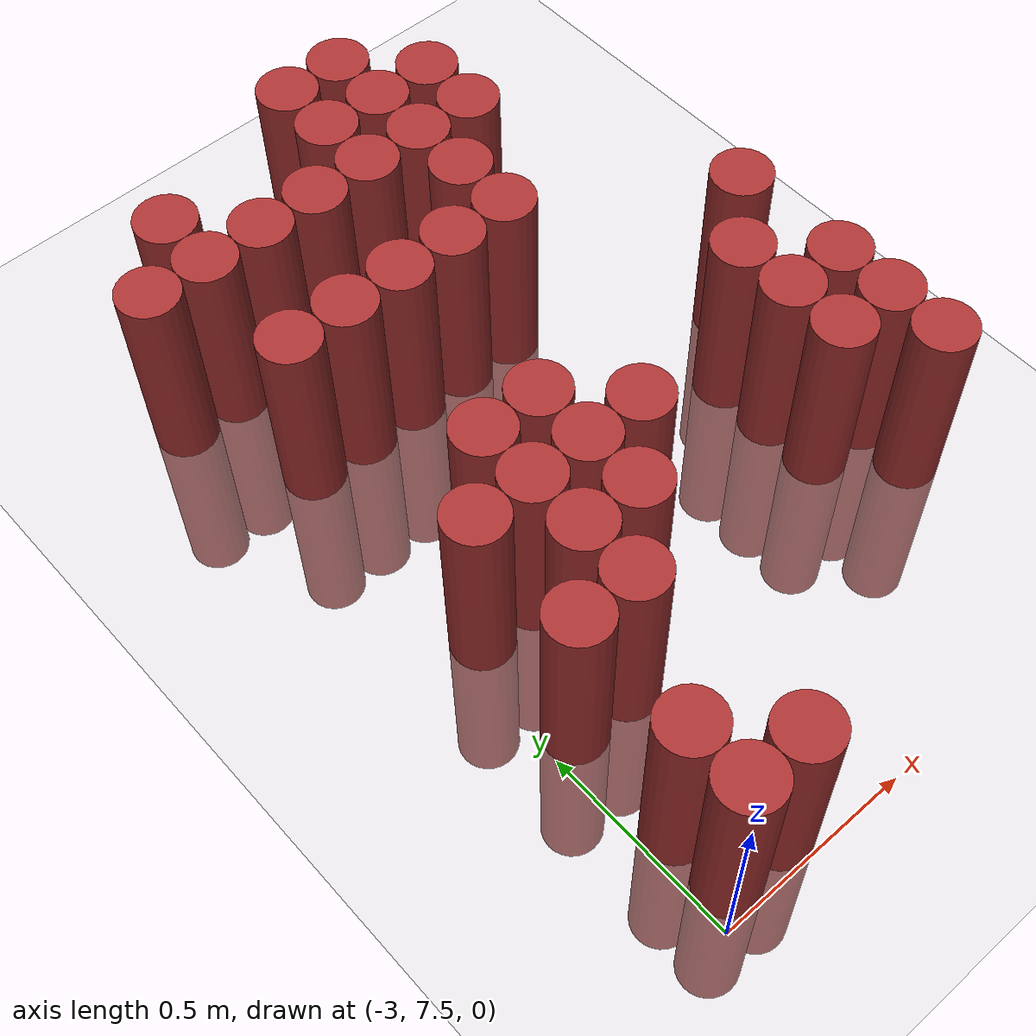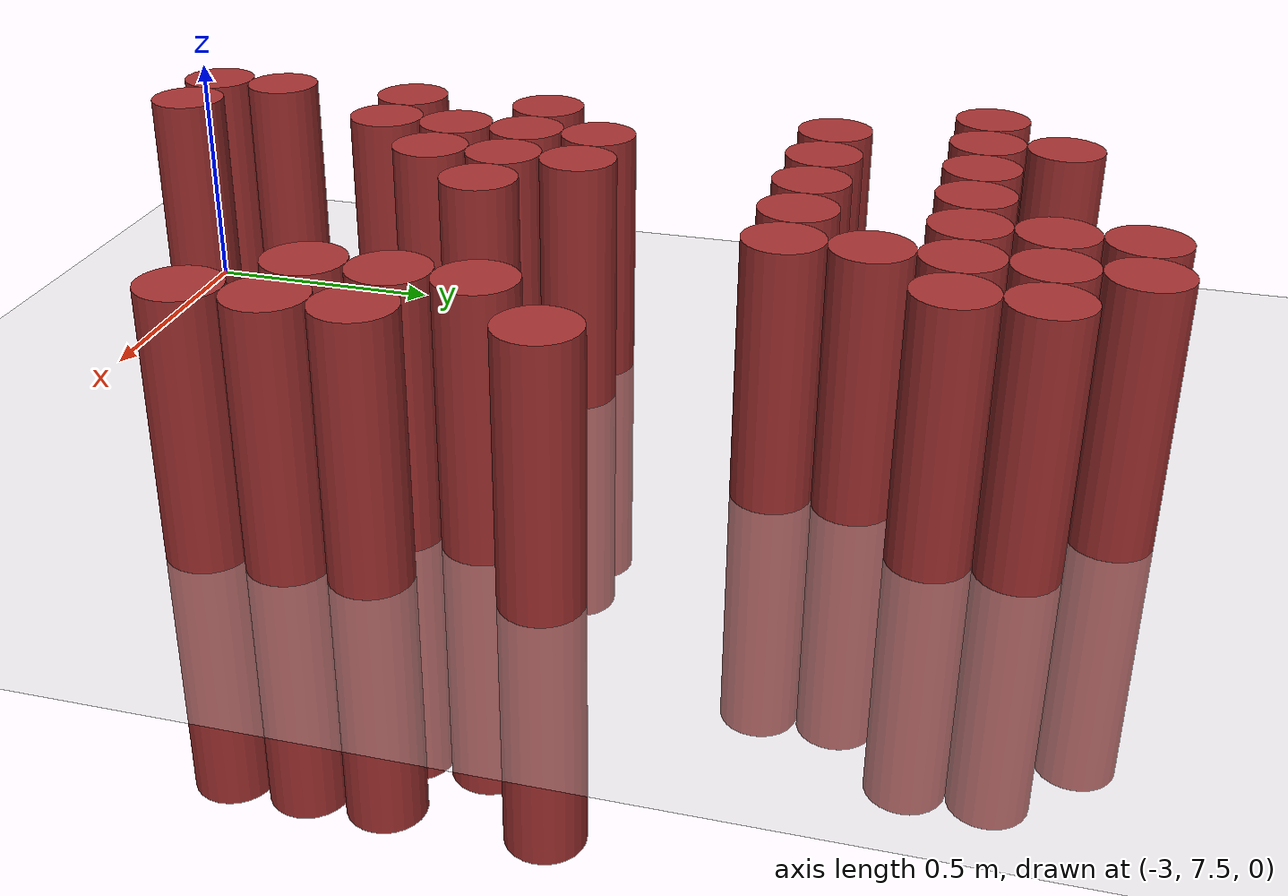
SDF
<sdf version="1.6">
 <world name="default">
  <model name="ground_plane">
   <static>1</static>
   <link name="link">
    <collision name="collision">
     <geometry><plane><normal>0 0 1</normal><size>100 100</size></plane></geometry>
     <surface><friction><ode><mu>100</mu><mu2>50</mu2></ode></friction></surface>
    </collision>
    <visual name="visual">
     <cast_shadows>0</cast_shadows>
     <geometry><plane><normal>0 0 1</normal><size>100 100</size></plane></geometry>
     <material>
      <script><uri>file://media/materials/scripts/gazebo.material</uri><name>Gazebo/Grey</name></script>
     </material>
    </visual>
   </link>
  </model>
  <model name="unit_cylinder_203">
   <static>1</static>
   <pose>-3.075000 9.225000 0.000000 0.000000 0.000000 0.000000</pose>
   <link name="link">
    <inertial>
     <mass>1</mass>
     <inertia><ixx>0.145833</ixx><ixy>0</ixy><ixz>0</ixz><iyy>0.145833</iyy><iyz>0</iyz><izz>0.125</izz></inertia>
    </inertial>
    <collision name="collision">
     <geometry><cylinder><radius>0.075000</radius><length>1</length></cylinder></geometry>
    </collision>
    <visual name="visual">
     <geometry><cylinder><radius>0.075000</radius><length>1</length></cylinder></geometry>
     <material>
      <ambient>0.648000 0.192000 0.192000 1</ambient>
      <diffuse>0.648000 0.192000 0.192000 1</diffuse>
     </material>
     <material>
      <script><name>Gazebo/Grey</name><uri>file://media/materials/scripts/gazebo.material</uri></script>
     </material>
    </visual>
    <sensor name="sensor_contact" type="contact"><contact><collision>collision</collision></contact></sensor>
   </link>
   <plugin filename="gz-sim-touchplugin-system" name="gz::sim::systems::TouchPlugin">
    <target>robot</target>
    <namespace>robot</namespace>
    <time>0.001</time>
    <enabled>true</enabled>
   </plugin>
  </model>
  <model name="unit_cylinder_208">
   <static>1</static>
   <pose>-2.925000 7.575000 0.000000 0.000000 0.000000 0.000000</pose>
   <link name="link">
    <inertial>
     <mass>1</mass>
     <inertia><ixx>0.145833</ixx><ixy>0</ixy><ixz>0</ixz><iyy>0.145833</iyy><iyz>0</iyz><izz>0.125</izz></inertia>
    </inertial>
    <collision name="collision">
     <geometry><cylinder><radius>0.075000</radius><length>1</length></cylinder></geometry>
    </collision>
    <visual name="visual">
     <geometry><cylinder><radius>0.075000</radius><length>1</length></cylinder></geometry>
     <material>
      <ambient>0.648000 0.192000 0.192000 1</ambient>
      <diffuse>0.648000 0.192000 0.192000 1</diffuse>
     </material>
     <material>
      <script><name>Gazebo/Grey</name><uri>file://media/materials/scripts/gazebo.material</uri></script>
     </material>
    </visual>
    <sensor name="sensor_contact" type="contact"><contact><collision>collision</collision></contact></sensor>
   </link>
   <plugin filename="gz-sim-touchplugin-system" name="gz::sim::systems::TouchPlugin">
    <target>robot</target>
    <namespace>robot</namespace>
    <time>0.001</time>
    <enabled>true</enabled>
   </plugin>
  </model>
  <model name="unit_cylinder_209">
   <static>1</static>
   <pose>-2.925000 7.725000 0.000000 0.000000 0.000000 0.000000</pose>
   <link name="link">
    <inertial>
     <mass>1</mass>
     <inertia><ixx>0.145833</ixx><ixy>0</ixy><ixz>0</ixz><iyy>0.145833</iyy><iyz>0</iyz><izz>0.125</izz></inertia>
    </inertial>
    <collision name="collision">
     <geometry><cylinder><radius>0.075000</radius><length>1</length></cylinder></geometry>
    </collision>
    <visual name="visual">
     <geometry><cylinder><radius>0.075000</radius><length>1</length></cylinder></geometry>
     <material>
      <ambient>0.648000 0.192000 0.192000 1</ambient>
      <diffuse>0.648000 0.192000 0.192000 1</diffuse>
     </material>
     <material>
      <script><name>Gazebo/Grey</name><uri>file://media/materials/scripts/gazebo.material</uri></script>
     </material>
    </visual>
    <sensor name="sensor_contact" type="contact"><contact><collision>collision</collision></contact></sensor>
   </link>
   <plugin filename="gz-sim-touchplugin-system" name="gz::sim::systems::TouchPlugin">
    <target>robot</target>
    <namespace>robot</namespace>
    <time>0.001</time>
    <enabled>true</enabled>
   </plugin>
  </model>
  <model name="unit_cylinder_210">
   <static>1</static>
   <pose>-2.925000 8.025000 0.000000 0.000000 0.000000 0.000000</pose>
   <link name="link">
    <inertial>
     <mass>1</mass>
     <inertia><ixx>0.145833</ixx><ixy>0</ixy><ixz>0</ixz><iyy>0.145833</iyy><iyz>0</iyz><izz>0.125</izz></inertia>
    </inertial>
    <collision name="collision">
     <geometry><cylinder><radius>0.075000</radius><length>1</length></cylinder></geometry>
    </collision>
    <visual name="visual">
     <geometry><cylinder><radius>0.075000</radius><length>1</length></cylinder></geometry>
     <material>
      <ambient>0.648000 0.192000 0.192000 1</ambient>
      <diffuse>0.648000 0.192000 0.192000 1</diffuse>
     </material>
     <material>
      <script><name>Gazebo/Grey</name><uri>file://media/materials/scripts/gazebo.material</uri></script>
     </material>
    </visual>
    <sensor name="sensor_contact" type="contact"><contact><collision>collision</collision></contact></sensor>
   </link>
   <plugin filename="gz-sim-touchplugin-system" name="gz::sim::systems::TouchPlugin">
    <target>robot</target>
    <namespace>robot</namespace>
    <time>0.001</time>
    <enabled>true</enabled>
   </plugin>
  </model>
  <model name="unit_cylinder_211">
   <static>1</static>
   <pose>-2.925000 8.325000 0.000000 0.000000 0.000000 0.000000</pose>
   <link name="link">
    <inertial>
     <mass>1</mass>
     <inertia><ixx>0.145833</ixx><ixy>0</ixy><ixz>0</ixz><iyy>0.145833</iyy><iyz>0</iyz><izz>0.125</izz></inertia>
    </inertial>
    <collision name="collision">
     <geometry><cylinder><radius>0.075000</radius><length>1</length></cylinder></geometry>
    </collision>
    <visual name="visual">
     <geometry><cylinder><radius>0.075000</radius><length>1</length></cylinder></geometry>
     <material>
      <ambient>0.648000 0.192000 0.192000 1</ambient>
      <diffuse>0.648000 0.192000 0.192000 1</diffuse>
     </material>
     <material>
      <script><name>Gazebo/Grey</name><uri>file://media/materials/scripts/gazebo.material</uri></script>
     </material>
    </visual>
    <sensor name="sensor_contact" type="contact"><contact><collision>collision</collision></contact></sensor>
   </link>
   <plugin filename="gz-sim-touchplugin-system" name="gz::sim::systems::TouchPlugin">
    <target>robot</target>
    <namespace>robot</namespace>
    <time>0.001</time>
    <enabled>true</enabled>
   </plugin>
  </model>
  <model name="unit_cylinder_212">
   <static>1</static>
   <pose>-2.925000 8.925000 0.000000 0.000000 0.000000 0.000000</pose>
   <link name="link">
    <inertial>
     <mass>1</mass>
     <inertia><ixx>0.145833</ixx><ixy>0</ixy><ixz>0</ixz><iyy>0.145833</iyy><iyz>0</iyz><izz>0.125</izz></inertia>
    </inertial>
    <collision name="collision">
     <geometry><cylinder><radius>0.075000</radius><length>1</length></cylinder></geometry>
    </collision>
    <visual name="visual">
     <geometry><cylinder><radius>0.075000</radius><length>1</length></cylinder></geometry>
     <material>
      <ambient>0.648000 0.192000 0.192000 1</ambient>
      <diffuse>0.648000 0.192000 0.192000 1</diffuse>
     </material>
     <material>
      <script><name>Gazebo/Grey</name><uri>file://media/materials/scripts/gazebo.material</uri></script>
     </material>
    </visual>
    <sensor name="sensor_contact" type="contact"><contact><collision>collision</collision></contact></sensor>
   </link>
   <plugin filename="gz-sim-touchplugin-system" name="gz::sim::systems::TouchPlugin">
    <target>robot</target>
    <namespace>robot</namespace>
    <time>0.001</time>
    <enabled>true</enabled>
   </plugin>
  </model>
  <model name="unit_cylinder_213">
   <static>1</static>
   <pose>-2.925000 9.225000 0.000000 0.000000 0.000000 0.000000</pose>
   <link name="link">
    <inertial>
     <mass>1</mass>
     <inertia><ixx>0.145833</ixx><ixy>0</ixy><ixz>0</ixz><iyy>0.145833</iyy><iyz>0</iyz><izz>0.125</izz></inertia>
    </inertial>
    <collision name="collision">
     <geometry><cylinder><radius>0.075000</radius><length>1</length></cylinder></geometry>
    </collision>
    <visual name="visual">
     <geometry><cylinder><radius>0.075000</radius><length>1</length></cylinder></geometry>
     <material>
      <ambient>0.648000 0.192000 0.192000 1</ambient>
      <diffuse>0.648000 0.192000 0.192000 1</diffuse>
     </material>
     <material>
      <script><name>Gazebo/Grey</name><uri>file://media/materials/scripts/gazebo.material</uri></script>
     </material>
    </visual>
    <sensor name="sensor_contact" type="contact"><contact><collision>collision</collision></contact></sensor>
   </link>
   <plugin filename="gz-sim-touchplugin-system" name="gz::sim::systems::TouchPlugin">
    <target>robot</target>
    <namespace>robot</namespace>
    <time>0.001</time>
    <enabled>true</enabled>
   </plugin>
  </model>
  <model name="unit_cylinder_214">
   <static>1</static>
   <pose>-2.925000 9.375000 0.000000 0.000000 0.000000 0.000000</pose>
   <link name="link">
    <inertial>
     <mass>1</mass>
     <inertia><ixx>0.145833</ixx><ixy>0</ixy><ixz>0</ixz><iyy>0.145833</iyy><iyz>0</iyz><izz>0.125</izz></inertia>
    </inertial>
    <collision name="collision">
     <geometry><cylinder><radius>0.075000</radius><length>1</length></cylinder></geometry>
    </collision>
    <visual name="visual">
     <geometry><cylinder><radius>0.075000</radius><length>1</length></cylinder></geometry>
     <material>
      <ambient>0.648000 0.192000 0.192000 1</ambient>
      <diffuse>0.648000 0.192000 0.192000 1</diffuse>
     </material>
     <material>
      <script><name>Gazebo/Grey</name><uri>file://media/materials/scripts/gazebo.material</uri></script>
     </material>
    </visual>
    <sensor name="sensor_contact" type="contact"><contact><collision>collision</collision></contact></sensor>
   </link>
   <plugin filename="gz-sim-touchplugin-system" name="gz::sim::systems::TouchPlugin">
    <target>robot</target>
    <namespace>robot</namespace>
    <time>0.001</time>
    <enabled>true</enabled>
   </plugin>
  </model>
  <model name="unit_cylinder_217">
   <static>1</static>
   <pose>-2.775000 7.575000 0.000000 0.000000 0.000000 0.000000</pose>
   <link name="link">
    <inertial>
     <mass>1</mass>
     <inertia><ixx>0.145833</ixx><ixy>0</ixy><ixz>0</ixz><iyy>0.145833</iyy><iyz>0</iyz><izz>0.125</izz></inertia>
    </inertial>
    <collision name="collision">
     <geometry><cylinder><radius>0.075000</radius><length>1</length></cylinder></geometry>
    </collision>
    <visual name="visual">
     <geometry><cylinder><radius>0.075000</radius><length>1</length></cylinder></geometry>
     <material>
      <ambient>0.648000 0.192000 0.192000 1</ambient>
      <diffuse>0.648000 0.192000 0.192000 1</diffuse>
     </material>
     <material>
      <script><name>Gazebo/Grey</name><uri>file://media/materials/scripts/gazebo.material</uri></script>
     </material>
    </visual>
    <sensor name="sensor_contact" type="contact"><contact><collision>collision</collision></contact></sensor>
   </link>
   <plugin filename="gz-sim-touchplugin-system" name="gz::sim::systems::TouchPlugin">
    <target>robot</target>
    <namespace>robot</namespace>
    <time>0.001</time>
    <enabled>true</enabled>
   </plugin>
  </model>
  <model name="unit_cylinder_218">
   <static>1</static>
   <pose>-2.775000 8.025000 0.000000 0.000000 0.000000 0.000000</pose>
   <link name="link">
    <inertial>
     <mass>1</mass>
     <inertia><ixx>0.145833</ixx><ixy>0</ixy><ixz>0</ixz><iyy>0.145833</iyy><iyz>0</iyz><izz>0.125</izz></inertia>
    </inertial>
    <collision name="collision">
     <geometry><cylinder><radius>0.075000</radius><length>1</length></cylinder></geometry>
    </collision>
    <visual name="visual">
     <geometry><cylinder><radius>0.075000</radius><length>1</length></cylinder></geometry>
     <material>
      <ambient>0.648000 0.192000 0.192000 1</ambient>
      <diffuse>0.648000 0.192000 0.192000 1</diffuse>
     </material>
     <material>
      <script><name>Gazebo/Grey</name><uri>file://media/materials/scripts/gazebo.material</uri></script>
     </material>
    </visual>
    <sensor name="sensor_contact" type="contact"><contact><collision>collision</collision></contact></sensor>
   </link>
   <plugin filename="gz-sim-touchplugin-system" name="gz::sim::systems::TouchPlugin">
    <target>robot</target>
    <namespace>robot</namespace>
    <time>0.001</time>
    <enabled>true</enabled>
   </plugin>
  </model>
  <model name="unit_cylinder_219">
   <static>1</static>
   <pose>-2.775000 8.175000 0.000000 0.000000 0.000000 0.000000</pose>
   <link name="link">
    <inertial>
     <mass>1</mass>
     <inertia><ixx>0.145833</ixx><ixy>0</ixy><ixz>0</ixz><iyy>0.145833</iyy><iyz>0</iyz><izz>0.125</izz></inertia>
    </inertial>
    <collision name="collision">
     <geometry><cylinder><radius>0.075000</radius><length>1</length></cylinder></geometry>
    </collision>
    <visual name="visual">
     <geometry><cylinder><radius>0.075000</radius><length>1</length></cylinder></geometry>
     <material>
      <ambient>0.648000 0.192000 0.192000 1</ambient>
      <diffuse>0.648000 0.192000 0.192000 1</diffuse>
     </material>
     <material>
      <script><name>Gazebo/Grey</name><uri>file://media/materials/scripts/gazebo.material</uri></script>
     </material>
    </visual>
    <sensor name="sensor_contact" type="contact"><contact><collision>collision</collision></contact></sensor>
   </link>
   <plugin filename="gz-sim-touchplugin-system" name="gz::sim::systems::TouchPlugin">
    <target>robot</target>
    <namespace>robot</namespace>
    <time>0.001</time>
    <enabled>true</enabled>
   </plugin>
  </model>
  <model name="unit_cylinder_220">
   <static>1</static>
   <pose>-2.775000 8.325000 0.000000 0.000000 0.000000 0.000000</pose>
   <link name="link">
    <inertial>
     <mass>1</mass>
     <inertia><ixx>0.145833</ixx><ixy>0</ixy><ixz>0</ixz><iyy>0.145833</iyy><iyz>0</iyz><izz>0.125</izz></inertia>
    </inertial>
    <collision name="collision">
     <geometry><cylinder><radius>0.075000</radius><length>1</length></cylinder></geometry>
    </collision>
    <visual name="visual">
     <geometry><cylinder><radius>0.075000</radius><length>1</length></cylinder></geometry>
     <material>
      <ambient>0.648000 0.192000 0.192000 1</ambient>
      <diffuse>0.648000 0.192000 0.192000 1</diffuse>
     </material>
     <material>
      <script><name>Gazebo/Grey</name><uri>file://media/materials/scripts/gazebo.material</uri></script>
     </material>
    </visual>
    <sensor name="sensor_contact" type="contact"><contact><collision>collision</collision></contact></sensor>
   </link>
   <plugin filename="gz-sim-touchplugin-system" name="gz::sim::systems::TouchPlugin">
    <target>robot</target>
    <namespace>robot</namespace>
    <time>0.001</time>
    <enabled>true</enabled>
   </plugin>
  </model>
  <model name="unit_cylinder_221">
   <static>1</static>
   <pose>-2.775000 8.475000 0.000000 0.000000 0.000000 0.000000</pose>
   <link name="link">
    <inertial>
     <mass>1</mass>
     <inertia><ixx>0.145833</ixx><ixy>0</ixy><ixz>0</ixz><iyy>0.145833</iyy><iyz>0</iyz><izz>0.125</izz></inertia>
    </inertial>
    <collision name="collision">
     <geometry><cylinder><radius>0.075000</radius><length>1</length></cylinder></geometry>
    </collision>
    <visual name="visual">
     <geometry><cylinder><radius>0.075000</radius><length>1</length></cylinder></geometry>
     <material>
      <ambient>0.648000 0.192000 0.192000 1</ambient>
      <diffuse>0.648000 0.192000 0.192000 1</diffuse>
     </material>
     <material>
      <script><name>Gazebo/Grey</name><uri>file://media/materials/scripts/gazebo.material</uri></script>
     </material>
    </visual>
    <sensor name="sensor_contact" type="contact"><contact><collision>collision</collision></contact></sensor>
   </link>
   <plugin filename="gz-sim-touchplugin-system" name="gz::sim::systems::TouchPlugin">
    <target>robot</target>
    <namespace>robot</namespace>
    <time>0.001</time>
    <enabled>true</enabled>
   </plugin>
  </model>
  <model name="unit_cylinder_222">
   <static>1</static>
   <pose>-2.775000 8.925000 0.000000 0.000000 0.000000 0.000000</pose>
   <link name="link">
    <inertial>
     <mass>1</mass>
     <inertia><ixx>0.145833</ixx><ixy>0</ixy><ixz>0</ixz><iyy>0.145833</iyy><iyz>0</iyz><izz>0.125</izz></inertia>
    </inertial>
    <collision name="collision">
     <geometry><cylinder><radius>0.075000</radius><length>1</length></cylinder></geometry>
    </collision>
    <visual name="visual">
     <geometry><cylinder><radius>0.075000</radius><length>1</length></cylinder></geometry>
     <material>
      <ambient>0.648000 0.192000 0.192000 1</ambient>
      <diffuse>0.648000 0.192000 0.192000 1</diffuse>
     </material>
     <material>
      <script><name>Gazebo/Grey</name><uri>file://media/materials/scripts/gazebo.material</uri></script>
     </material>
    </visual>
    <sensor name="sensor_contact" type="contact"><contact><collision>collision</collision></contact></sensor>
   </link>
   <plugin filename="gz-sim-touchplugin-system" name="gz::sim::systems::TouchPlugin">
    <target>robot</target>
    <namespace>robot</namespace>
    <time>0.001</time>
    <enabled>true</enabled>
   </plugin>
  </model>
  <model name="unit_cylinder_223">
   <static>1</static>
   <pose>-2.775000 9.225000 0.000000 0.000000 0.000000 0.000000</pose>
   <link name="link">
    <inertial>
     <mass>1</mass>
     <inertia><ixx>0.145833</ixx><ixy>0</ixy><ixz>0</ixz><iyy>0.145833</iyy><iyz>0</iyz><izz>0.125</izz></inertia>
    </inertial>
    <collision name="collision">
     <geometry><cylinder><radius>0.075000</radius><length>1</length></cylinder></geometry>
    </collision>
    <visual name="visual">
     <geometry><cylinder><radius>0.075000</radius><length>1</length></cylinder></geometry>
     <material>
      <ambient>0.648000 0.192000 0.192000 1</ambient>
      <diffuse>0.648000 0.192000 0.192000 1</diffuse>
     </material>
     <material>
      <script><name>Gazebo/Grey</name><uri>file://media/materials/scripts/gazebo.material</uri></script>
     </material>
    </visual>
    <sensor name="sensor_contact" type="contact"><contact><collision>collision</collision></contact></sensor>
   </link>
   <plugin filename="gz-sim-touchplugin-system" name="gz::sim::systems::TouchPlugin">
    <target>robot</target>
    <namespace>robot</namespace>
    <time>0.001</time>
    <enabled>true</enabled>
   </plugin>
  </model>
  <model name="unit_cylinder_227">
   <static>1</static>
   <pose>-2.625000 8.175000 0.000000 0.000000 0.000000 0.000000</pose>
   <link name="link">
    <inertial>
     <mass>1</mass>
     <inertia><ixx>0.145833</ixx><ixy>0</ixy><ixz>0</ixz><iyy>0.145833</iyy><iyz>0</iyz><izz>0.125</izz></inertia>
    </inertial>
    <collision name="collision">
     <geometry><cylinder><radius>0.075000</radius><length>1</length></cylinder></geometry>
    </collision>
    <visual name="visual">
     <geometry><cylinder><radius>0.075000</radius><length>1</length></cylinder></geometry>
     <material>
      <ambient>0.648000 0.192000 0.192000 1</ambient>
      <diffuse>0.648000 0.192000 0.192000 1</diffuse>
     </material>
     <material>
      <script><name>Gazebo/Grey</name><uri>file://media/materials/scripts/gazebo.material</uri></script>
     </material>
    </visual>
    <sensor name="sensor_contact" type="contact"><contact><collision>collision</collision></contact></sensor>
   </link>
   <plugin filename="gz-sim-touchplugin-system" name="gz::sim::systems::TouchPlugin">
    <target>robot</target>
    <namespace>robot</namespace>
    <time>0.001</time>
    <enabled>true</enabled>
   </plugin>
  </model>
  <model name="unit_cylinder_228">
   <static>1</static>
   <pose>-2.625000 8.325000 0.000000 0.000000 0.000000 0.000000</pose>
   <link name="link">
    <inertial>
     <mass>1</mass>
     <inertia><ixx>0.145833</ixx><ixy>0</ixy><ixz>0</ixz><iyy>0.145833</iyy><iyz>0</iyz><izz>0.125</izz></inertia>
    </inertial>
    <collision name="collision">
     <geometry><cylinder><radius>0.075000</radius><length>1</length></cylinder></geometry>
    </collision>
    <visual name="visual">
     <geometry><cylinder><radius>0.075000</radius><length>1</length></cylinder></geometry>
     <material>
      <ambient>0.648000 0.192000 0.192000 1</ambient>
      <diffuse>0.648000 0.192000 0.192000 1</diffuse>
     </material>
     <material>
      <script><name>Gazebo/Grey</name><uri>file://media/materials/scripts/gazebo.material</uri></script>
     </material>
    </visual>
    <sensor name="sensor_contact" type="contact"><contact><collision>collision</collision></contact></sensor>
   </link>
   <plugin filename="gz-sim-touchplugin-system" name="gz::sim::systems::TouchPlugin">
    <target>robot</target>
    <namespace>robot</namespace>
    <time>0.001</time>
    <enabled>true</enabled>
   </plugin>
  </model>
  <model name="unit_cylinder_229">
   <static>1</static>
   <pose>-2.625000 8.475000 0.000000 0.000000 0.000000 0.000000</pose>
   <link name="link">
    <inertial>
     <mass>1</mass>
     <inertia><ixx>0.145833</ixx><ixy>0</ixy><ixz>0</ixz><iyy>0.145833</iyy><iyz>0</iyz><izz>0.125</izz></inertia>
    </inertial>
    <collision name="collision">
     <geometry><cylinder><radius>0.075000</radius><length>1</length></cylinder></geometry>
    </collision>
    <visual name="visual">
     <geometry><cylinder><radius>0.075000</radius><length>1</length></cylinder></geometry>
     <material>
      <ambient>0.648000 0.192000 0.192000 1</ambient>
      <diffuse>0.648000 0.192000 0.192000 1</diffuse>
     </material>
     <material>
      <script><name>Gazebo/Grey</name><uri>file://media/materials/scripts/gazebo.material</uri></script>
     </material>
    </visual>
    <sensor name="sensor_contact" type="contact"><contact><collision>collision</collision></contact></sensor>
   </link>
   <plugin filename="gz-sim-touchplugin-system" name="gz::sim::systems::TouchPlugin">
    <target>robot</target>
    <namespace>robot</namespace>
    <time>0.001</time>
    <enabled>true</enabled>
   </plugin>
  </model>
  <model name="unit_cylinder_230">
   <static>1</static>
   <pose>-2.625000 8.925000 0.000000 0.000000 0.000000 0.000000</pose>
   <link name="link">
    <inertial>
     <mass>1</mass>
     <inertia><ixx>0.145833</ixx><ixy>0</ixy><ixz>0</ixz><iyy>0.145833</iyy><iyz>0</iyz><izz>0.125</izz></inertia>
    </inertial>
    <collision name="collision">
     <geometry><cylinder><radius>0.075000</radius><length>1</length></cylinder></geometry>
    </collision>
    <visual name="visual">
     <geometry><cylinder><radius>0.075000</radius><length>1</length></cylinder></geometry>
     <material>
      <ambient>0.648000 0.192000 0.192000 1</ambient>
      <diffuse>0.648000 0.192000 0.192000 1</diffuse>
     </material>
     <material>
      <script><name>Gazebo/Grey</name><uri>file://media/materials/scripts/gazebo.material</uri></script>
     </material>
    </visual>
    <sensor name="sensor_contact" type="contact"><contact><collision>collision</collision></contact></sensor>
   </link>
   <plugin filename="gz-sim-touchplugin-system" name="gz::sim::systems::TouchPlugin">
    <target>robot</target>
    <namespace>robot</namespace>
    <time>0.001</time>
    <enabled>true</enabled>
   </plugin>
  </model>
  <model name="unit_cylinder_231">
   <static>1</static>
   <pose>-2.625000 9.225000 0.000000 0.000000 0.000000 0.000000</pose>
   <link name="link">
    <inertial>
     <mass>1</mass>
     <inertia><ixx>0.145833</ixx><ixy>0</ixy><ixz>0</ixz><iyy>0.145833</iyy><iyz>0</iyz><izz>0.125</izz></inertia>
    </inertial>
    <collision name="collision">
     <geometry><cylinder><radius>0.075000</radius><length>1</length></cylinder></geometry>
    </collision>
    <visual name="visual">
     <geometry><cylinder><radius>0.075000</radius><length>1</length></cylinder></geometry>
     <material>
      <ambient>0.648000 0.192000 0.192000 1</ambient>
      <diffuse>0.648000 0.192000 0.192000 1</diffuse>
     </material>
     <material>
      <script><name>Gazebo/Grey</name><uri>file://media/materials/scripts/gazebo.material</uri></script>
     </material>
    </visual>
    <sensor name="sensor_contact" type="contact"><contact><collision>collision</collision></contact></sensor>
   </link>
   <plugin filename="gz-sim-touchplugin-system" name="gz::sim::systems::TouchPlugin">
    <target>robot</target>
    <namespace>robot</namespace>
    <time>0.001</time>
    <enabled>true</enabled>
   </plugin>
  </model>
  <model name="unit_cylinder_236">
   <static>1</static>
   <pose>-2.475000 8.325000 0.000000 0.000000 0.000000 0.000000</pose>
   <link name="link">
    <inertial>
     <mass>1</mass>
     <inertia><ixx>0.145833</ixx><ixy>0</ixy><ixz>0</ixz><iyy>0.145833</iyy><iyz>0</iyz><izz>0.125</izz></inertia>
    </inertial>
    <collision name="collision">
     <geometry><cylinder><radius>0.075000</radius><length>1</length></cylinder></geometry>
    </collision>
    <visual name="visual">
     <geometry><cylinder><radius>0.075000</radius><length>1</length></cylinder></geometry>
     <material>
      <ambient>0.648000 0.192000 0.192000 1</ambient>
      <diffuse>0.648000 0.192000 0.192000 1</diffuse>
     </material>
     <material>
      <script><name>Gazebo/Grey</name><uri>file://media/materials/scripts/gazebo.material</uri></script>
     </material>
    </visual>
    <sensor name="sensor_contact" type="contact"><contact><collision>collision</collision></contact></sensor>
   </link>
   <plugin filename="gz-sim-touchplugin-system" name="gz::sim::systems::TouchPlugin">
    <target>robot</target>
    <namespace>robot</namespace>
    <time>0.001</time>
    <enabled>true</enabled>
   </plugin>
  </model>
  <model name="unit_cylinder_237">
   <static>1</static>
   <pose>-2.475000 8.925000 0.000000 0.000000 0.000000 0.000000</pose>
   <link name="link">
    <inertial>
     <mass>1</mass>
     <inertia><ixx>0.145833</ixx><ixy>0</ixy><ixz>0</ixz><iyy>0.145833</iyy><iyz>0</iyz><izz>0.125</izz></inertia>
    </inertial>
    <collision name="collision">
     <geometry><cylinder><radius>0.075000</radius><length>1</length></cylinder></geometry>
    </collision>
    <visual name="visual">
     <geometry><cylinder><radius>0.075000</radius><length>1</length></cylinder></geometry>
     <material>
      <ambient>0.648000 0.192000 0.192000 1</ambient>
      <diffuse>0.648000 0.192000 0.192000 1</diffuse>
     </material>
     <material>
      <script><name>Gazebo/Grey</name><uri>file://media/materials/scripts/gazebo.material</uri></script>
     </material>
    </visual>
    <sensor name="sensor_contact" type="contact"><contact><collision>collision</collision></contact></sensor>
   </link>
   <plugin filename="gz-sim-touchplugin-system" name="gz::sim::systems::TouchPlugin">
    <target>robot</target>
    <namespace>robot</namespace>
    <time>0.001</time>
    <enabled>true</enabled>
   </plugin>
  </model>
  <model name="unit_cylinder_238">
   <static>1</static>
   <pose>-2.475000 9.225000 0.000000 0.000000 0.000000 0.000000</pose>
   <link name="link">
    <inertial>
     <mass>1</mass>
     <inertia><ixx>0.145833</ixx><ixy>0</ixy><ixz>0</ixz><iyy>0.145833</iyy><iyz>0</iyz><izz>0.125</izz></inertia>
    </inertial>
    <collision name="collision">
     <geometry><cylinder><radius>0.075000</radius><length>1</length></cylinder></geometry>
    </collision>
    <visual name="visual">
     <geometry><cylinder><radius>0.075000</radius><length>1</length></cylinder></geometry>
     <material>
      <ambient>0.648000 0.192000 0.192000 1</ambient>
      <diffuse>0.648000 0.192000 0.192000 1</diffuse>
     </material>
     <material>
      <script><name>Gazebo/Grey</name><uri>file://media/materials/scripts/gazebo.material</uri></script>
     </material>
    </visual>
    <sensor name="sensor_contact" type="contact"><contact><collision>collision</collision></contact></sensor>
   </link>
   <plugin filename="gz-sim-touchplugin-system" name="gz::sim::systems::TouchPlugin">
    <target>robot</target>
    <namespace>robot</namespace>
    <time>0.001</time>
    <enabled>true</enabled>
   </plugin>
  </model>
  <model name="unit_cylinder_239">
   <static>1</static>
   <pose>-2.475000 9.375000 0.000000 0.000000 0.000000 0.000000</pose>
   <link name="link">
    <inertial>
     <mass>1</mass>
     <inertia><ixx>0.145833</ixx><ixy>0</ixy><ixz>0</ixz><iyy>0.145833</iyy><iyz>0</iyz><izz>0.125</izz></inertia>
    </inertial>
    <collision name="collision">
     <geometry><cylinder><radius>0.075000</radius><length>1</length></cylinder></geometry>
    </collision>
    <visual name="visual">
     <geometry><cylinder><radius>0.075000</radius><length>1</length></cylinder></geometry>
     <material>
      <ambient>0.648000 0.192000 0.192000 1</ambient>
      <diffuse>0.648000 0.192000 0.192000 1</diffuse>
     </material>
     <material>
      <script><name>Gazebo/Grey</name><uri>file://media/materials/scripts/gazebo.material</uri></script>
     </material>
    </visual>
    <sensor name="sensor_contact" type="contact"><contact><collision>collision</collision></contact></sensor>
   </link>
   <plugin filename="gz-sim-touchplugin-system" name="gz::sim::systems::TouchPlugin">
    <target>robot</target>
    <namespace>robot</namespace>
    <time>0.001</time>
    <enabled>true</enabled>
   </plugin>
  </model>
  <model name="unit_cylinder_240">
   <static>1</static>
   <pose>-2.475000 9.525000 0.000000 0.000000 0.000000 0.000000</pose>
   <link name="link">
    <inertial>
     <mass>1</mass>
     <inertia><ixx>0.145833</ixx><ixy>0</ixy><ixz>0</ixz><iyy>0.145833</iyy><iyz>0</iyz><izz>0.125</izz></inertia>
    </inertial>
    <collision name="collision">
     <geometry><cylinder><radius>0.075000</radius><length>1</length></cylinder></geometry>
    </collision>
    <visual name="visual">
     <geometry><cylinder><radius>0.075000</radius><length>1</length></cylinder></geometry>
     <material>
      <ambient>0.648000 0.192000 0.192000 1</ambient>
      <diffuse>0.648000 0.192000 0.192000 1</diffuse>
     </material>
     <material>
      <script><name>Gazebo/Grey</name><uri>file://media/materials/scripts/gazebo.material</uri></script>
     </material>
    </visual>
    <sensor name="sensor_contact" type="contact"><contact><collision>collision</collision></contact></sensor>
   </link>
   <plugin filename="gz-sim-touchplugin-system" name="gz::sim::systems::TouchPlugin">
    <target>robot</target>
    <namespace>robot</namespace>
    <time>0.001</time>
    <enabled>true</enabled>
   </plugin>
  </model>
  <model name="unit_cylinder_247">
   <static>1</static>
   <pose>-2.325000 8.925000 0.000000 0.000000 0.000000 0.000000</pose>
   <link name="link">
    <inertial>
     <mass>1</mass>
     <inertia><ixx>0.145833</ixx><ixy>0</ixy><ixz>0</ixz><iyy>0.145833</iyy><iyz>0</iyz><izz>0.125</izz></inertia>
    </inertial>
    <collision name="collision">
     <geometry><cylinder><radius>0.075000</radius><length>1</length></cylinder></geometry>
    </collision>
    <visual name="visual">
     <geometry><cylinder><radius>0.075000</radius><length>1</length></cylinder></geometry>
     <material>
      <ambient>0.648000 0.192000 0.192000 1</ambient>
      <diffuse>0.648000 0.192000 0.192000 1</diffuse>
     </material>
     <material>
      <script><name>Gazebo/Grey</name><uri>file://media/materials/scripts/gazebo.material</uri></script>
     </material>
    </visual>
    <sensor name="sensor_contact" type="contact"><contact><collision>collision</collision></contact></sensor>
   </link>
   <plugin filename="gz-sim-touchplugin-system" name="gz::sim::systems::TouchPlugin">
    <target>robot</target>
    <namespace>robot</namespace>
    <time>0.001</time>
    <enabled>true</enabled>
   </plugin>
  </model>
  <model name="unit_cylinder_248">
   <static>1</static>
   <pose>-2.325000 9.075000 0.000000 0.000000 0.000000 0.000000</pose>
   <link name="link">
    <inertial>
     <mass>1</mass>
     <inertia><ixx>0.145833</ixx><ixy>0</ixy><ixz>0</ixz><iyy>0.145833</iyy><iyz>0</iyz><izz>0.125</izz></inertia>
    </inertial>
    <collision name="collision">
     <geometry><cylinder><radius>0.075000</radius><length>1</length></cylinder></geometry>
    </collision>
    <visual name="visual">
     <geometry><cylinder><radius>0.075000</radius><length>1</length></cylinder></geometry>
     <material>
      <ambient>0.648000 0.192000 0.192000 1</ambient>
      <diffuse>0.648000 0.192000 0.192000 1</diffuse>
     </material>
     <material>
      <script><name>Gazebo/Grey</name><uri>file://media/materials/scripts/gazebo.material</uri></script>
     </material>
    </visual>
    <sensor name="sensor_contact" type="contact"><contact><collision>collision</collision></contact></sensor>
   </link>
   <plugin filename="gz-sim-touchplugin-system" name="gz::sim::systems::TouchPlugin">
    <target>robot</target>
    <namespace>robot</namespace>
    <time>0.001</time>
    <enabled>true</enabled>
   </plugin>
  </model>
  <model name="unit_cylinder_249">
   <static>1</static>
   <pose>-2.325000 9.225000 0.000000 0.000000 0.000000 0.000000</pose>
   <link name="link">
    <inertial>
     <mass>1</mass>
     <inertia><ixx>0.145833</ixx><ixy>0</ixy><ixz>0</ixz><iyy>0.145833</iyy><iyz>0</iyz><izz>0.125</izz></inertia>
    </inertial>
    <collision name="collision">
     <geometry><cylinder><radius>0.075000</radius><length>1</length></cylinder></geometry>
    </collision>
    <visual name="visual">
     <geometry><cylinder><radius>0.075000</radius><length>1</length></cylinder></geometry>
     <material>
      <ambient>0.648000 0.192000 0.192000 1</ambient>
      <diffuse>0.648000 0.192000 0.192000 1</diffuse>
     </material>
     <material>
      <script><name>Gazebo/Grey</name><uri>file://media/materials/scripts/gazebo.material</uri></script>
     </material>
    </visual>
    <sensor name="sensor_contact" type="contact"><contact><collision>collision</collision></contact></sensor>
   </link>
   <plugin filename="gz-sim-touchplugin-system" name="gz::sim::systems::TouchPlugin">
    <target>robot</target>
    <namespace>robot</namespace>
    <time>0.001</time>
    <enabled>true</enabled>
   </plugin>
  </model>
  <model name="unit_cylinder_250">
   <static>1</static>
   <pose>-2.325000 9.375000 0.000000 0.000000 0.000000 0.000000</pose>
   <link name="link">
    <inertial>
     <mass>1</mass>
     <inertia><ixx>0.145833</ixx><ixy>0</ixy><ixz>0</ixz><iyy>0.145833</iyy><iyz>0</iyz><izz>0.125</izz></inertia>
    </inertial>
    <collision name="collision">
     <geometry><cylinder><radius>0.075000</radius><length>1</length></cylinder></geometry>
    </collision>
    <visual name="visual">
     <geometry><cylinder><radius>0.075000</radius><length>1</length></cylinder></geometry>
     <material>
      <ambient>0.648000 0.192000 0.192000 1</ambient>
      <diffuse>0.648000 0.192000 0.192000 1</diffuse>
     </material>
     <material>
      <script><name>Gazebo/Grey</name><uri>file://media/materials/scripts/gazebo.material</uri></script>
     </material>
    </visual>
    <sensor name="sensor_contact" type="contact"><contact><collision>collision</collision></contact></sensor>
   </link>
   <plugin filename="gz-sim-touchplugin-system" name="gz::sim::systems::TouchPlugin">
    <target>robot</target>
    <namespace>robot</namespace>
    <time>0.001</time>
    <enabled>true</enabled>
   </plugin>
  </model>
  <model name="unit_cylinder_251">
   <static>1</static>
   <pose>-2.325000 9.525000 0.000000 0.000000 0.000000 0.000000</pose>
   <link name="link">
    <inertial>
     <mass>1</mass>
     <inertia><ixx>0.145833</ixx><ixy>0</ixy><ixz>0</ixz><iyy>0.145833</iyy><iyz>0</iyz><izz>0.125</izz></inertia>
    </inertial>
    <collision name="collision">
     <geometry><cylinder><radius>0.075000</radius><length>1</length></cylinder></geometry>
    </collision>
    <visual name="visual">
     <geometry><cylinder><radius>0.075000</radius><length>1</length></cylinder></geometry>
     <material>
      <ambient>0.648000 0.192000 0.192000 1</ambient>
      <diffuse>0.648000 0.192000 0.192000 1</diffuse>
     </material>
     <material>
      <script><name>Gazebo/Grey</name><uri>file://media/materials/scripts/gazebo.material</uri></script>
     </material>
    </visual>
    <sensor name="sensor_contact" type="contact"><contact><collision>collision</collision></contact></sensor>
   </link>
   <plugin filename="gz-sim-touchplugin-system" name="gz::sim::systems::TouchPlugin">
    <target>robot</target>
    <namespace>robot</namespace>
    <time>0.001</time>
    <enabled>true</enabled>
   </plugin>
  </model>
  <model name="unit_cylinder_257">
   <static>1</static>
   <pose>-2.175000 9.225000 0.000000 0.000000 0.000000 0.000000</pose>
   <link name="link">
    <inertial>
     <mass>1</mass>
     <inertia><ixx>0.145833</ixx><ixy>0</ixy><ixz>0</ixz><iyy>0.145833</iyy><iyz>0</iyz><izz>0.125</izz></inertia>
    </inertial>
    <collision name="collision">
     <geometry><cylinder><radius>0.075000</radius><length>1</length></cylinder></geometry>
    </collision>
    <visual name="visual">
     <geometry><cylinder><radius>0.075000</radius><length>1</length></cylinder></geometry>
     <material>
      <ambient>0.648000 0.192000 0.192000 1</ambient>
      <diffuse>0.648000 0.192000 0.192000 1</diffuse>
     </material>
     <material>
      <script><name>Gazebo/Grey</name><uri>file://media/materials/scripts/gazebo.material</uri></script>
     </material>
    </visual>
    <sensor name="sensor_contact" type="contact"><contact><collision>collision</collision></contact></sensor>
   </link>
   <plugin filename="gz-sim-touchplugin-system" name="gz::sim::systems::TouchPlugin">
    <target>robot</target>
    <namespace>robot</namespace>
    <time>0.001</time>
    <enabled>true</enabled>
   </plugin>
  </model>
  <model name="unit_cylinder_258">
   <static>1</static>
   <pose>-2.175000 9.375000 0.000000 0.000000 0.000000 0.000000</pose>
   <link name="link">
    <inertial>
     <mass>1</mass>
     <inertia><ixx>0.145833</ixx><ixy>0</ixy><ixz>0</ixz><iyy>0.145833</iyy><iyz>0</iyz><izz>0.125</izz></inertia>
    </inertial>
    <collision name="collision">
     <geometry><cylinder><radius>0.075000</radius><length>1</length></cylinder></geometry>
    </collision>
    <visual name="visual">
     <geometry><cylinder><radius>0.075000</radius><length>1</length></cylinder></geometry>
     <material>
      <ambient>0.648000 0.192000 0.192000 1</ambient>
      <diffuse>0.648000 0.192000 0.192000 1</diffuse>
     </material>
     <material>
      <script><name>Gazebo/Grey</name><uri>file://media/materials/scripts/gazebo.material</uri></script>
     </material>
    </visual>
    <sensor name="sensor_contact" type="contact"><contact><collision>collision</collision></contact></sensor>
   </link>
   <plugin filename="gz-sim-touchplugin-system" name="gz::sim::systems::TouchPlugin">
    <target>robot</target>
    <namespace>robot</namespace>
    <time>0.001</time>
    <enabled>true</enabled>
   </plugin>
  </model>
  <model name="unit_cylinder_263">
   <static>1</static>
   <pose>-2.025000 8.175000 0.000000 0.000000 0.000000 0.000000</pose>
   <link name="link">
    <inertial>
     <mass>1</mass>
     <inertia><ixx>0.145833</ixx><ixy>0</ixy><ixz>0</ixz><iyy>0.145833</iyy><iyz>0</iyz><izz>0.125</izz></inertia>
    </inertial>
    <collision name="collision">
     <geometry><cylinder><radius>0.075000</radius><length>1</length></cylinder></geometry>
    </collision>
    <visual name="visual">
     <geometry><cylinder><radius>0.075000</radius><length>1</length></cylinder></geometry>
     <material>
      <ambient>0.648000 0.192000 0.192000 1</ambient>
      <diffuse>0.648000 0.192000 0.192000 1</diffuse>
     </material>
     <material>
      <script><name>Gazebo/Grey</name><uri>file://media/materials/scripts/gazebo.material</uri></script>
     </material>
    </visual>
    <sensor name="sensor_contact" type="contact"><contact><collision>collision</collision></contact></sensor>
   </link>
   <plugin filename="gz-sim-touchplugin-system" name="gz::sim::systems::TouchPlugin">
    <target>robot</target>
    <namespace>robot</namespace>
    <time>0.001</time>
    <enabled>true</enabled>
   </plugin>
  </model>
  <model name="unit_cylinder_264">
   <static>1</static>
   <pose>-2.025000 8.325000 0.000000 0.000000 0.000000 0.000000</pose>
   <link name="link">
    <inertial>
     <mass>1</mass>
     <inertia><ixx>0.145833</ixx><ixy>0</ixy><ixz>0</ixz><iyy>0.145833</iyy><iyz>0</iyz><izz>0.125</izz></inertia>
    </inertial>
    <collision name="collision">
     <geometry><cylinder><radius>0.075000</radius><length>1</length></cylinder></geometry>
    </collision>
    <visual name="visual">
     <geometry><cylinder><radius>0.075000</radius><length>1</length></cylinder></geometry>
     <material>
      <ambient>0.648000 0.192000 0.192000 1</ambient>
      <diffuse>0.648000 0.192000 0.192000 1</diffuse>
     </material>
     <material>
      <script><name>Gazebo/Grey</name><uri>file://media/materials/scripts/gazebo.material</uri></script>
     </material>
    </visual>
    <sensor name="sensor_contact" type="contact"><contact><collision>collision</collision></contact></sensor>
   </link>
   <plugin filename="gz-sim-touchplugin-system" name="gz::sim::systems::TouchPlugin">
    <target>robot</target>
    <namespace>robot</namespace>
    <time>0.001</time>
    <enabled>true</enabled>
   </plugin>
  </model>
  <model name="unit_cylinder_265">
   <static>1</static>
   <pose>-2.025000 8.475000 0.000000 0.000000 0.000000 0.000000</pose>
   <link name="link">
    <inertial>
     <mass>1</mass>
     <inertia><ixx>0.145833</ixx><ixy>0</ixy><ixz>0</ixz><iyy>0.145833</iyy><iyz>0</iyz><izz>0.125</izz></inertia>
    </inertial>
    <collision name="collision">
     <geometry><cylinder><radius>0.075000</radius><length>1</length></cylinder></geometry>
    </collision>
    <visual name="visual">
     <geometry><cylinder><radius>0.075000</radius><length>1</length></cylinder></geometry>
     <material>
      <ambient>0.648000 0.192000 0.192000 1</ambient>
      <diffuse>0.648000 0.192000 0.192000 1</diffuse>
     </material>
     <material>
      <script><name>Gazebo/Grey</name><uri>file://media/materials/scripts/gazebo.material</uri></script>
     </material>
    </visual>
    <sensor name="sensor_contact" type="contact"><contact><collision>collision</collision></contact></sensor>
   </link>
   <plugin filename="gz-sim-touchplugin-system" name="gz::sim::systems::TouchPlugin">
    <target>robot</target>
    <namespace>robot</namespace>
    <time>0.001</time>
    <enabled>true</enabled>
   </plugin>
  </model>
  <model name="unit_cylinder_269">
   <static>1</static>
   <pose>-1.875000 8.025000 0.000000 0.000000 0.000000 0.000000</pose>
   <link name="link">
    <inertial>
     <mass>1</mass>
     <inertia><ixx>0.145833</ixx><ixy>0</ixy><ixz>0</ixz><iyy>0.145833</iyy><iyz>0</iyz><izz>0.125</izz></inertia>
    </inertial>
    <collision name="collision">
     <geometry><cylinder><radius>0.075000</radius><length>1</length></cylinder></geometry>
    </collision>
    <visual name="visual">
     <geometry><cylinder><radius>0.075000</radius><length>1</length></cylinder></geometry>
     <material>
      <ambient>0.648000 0.192000 0.192000 1</ambient>
      <diffuse>0.648000 0.192000 0.192000 1</diffuse>
     </material>
     <material>
      <script><name>Gazebo/Grey</name><uri>file://media/materials/scripts/gazebo.material</uri></script>
     </material>
    </visual>
    <sensor name="sensor_contact" type="contact"><contact><collision>collision</collision></contact></sensor>
   </link>
   <plugin filename="gz-sim-touchplugin-system" name="gz::sim::systems::TouchPlugin">
    <target>robot</target>
    <namespace>robot</namespace>
    <time>0.001</time>
    <enabled>true</enabled>
   </plugin>
  </model>
  <model name="unit_cylinder_270">
   <static>1</static>
   <pose>-1.875000 8.175000 0.000000 0.000000 0.000000 0.000000</pose>
   <link name="link">
    <inertial>
     <mass>1</mass>
     <inertia><ixx>0.145833</ixx><ixy>0</ixy><ixz>0</ixz><iyy>0.145833</iyy><iyz>0</iyz><izz>0.125</izz></inertia>
    </inertial>
    <collision name="collision">
     <geometry><cylinder><radius>0.075000</radius><length>1</length></cylinder></geometry>
    </collision>
    <visual name="visual">
     <geometry><cylinder><radius>0.075000</radius><length>1</length></cylinder></geometry>
     <material>
      <ambient>0.648000 0.192000 0.192000 1</ambient>
      <diffuse>0.648000 0.192000 0.192000 1</diffuse>
     </material>
     <material>
      <script><name>Gazebo/Grey</name><uri>file://media/materials/scripts/gazebo.material</uri></script>
     </material>
    </visual>
    <sensor name="sensor_contact" type="contact"><contact><collision>collision</collision></contact></sensor>
   </link>
   <plugin filename="gz-sim-touchplugin-system" name="gz::sim::systems::TouchPlugin">
    <target>robot</target>
    <namespace>robot</namespace>
    <time>0.001</time>
    <enabled>true</enabled>
   </plugin>
  </model>
  <model name="unit_cylinder_271">
   <static>1</static>
   <pose>-1.875000 8.325000 0.000000 0.000000 0.000000 0.000000</pose>
   <link name="link">
    <inertial>
     <mass>1</mass>
     <inertia><ixx>0.145833</ixx><ixy>0</ixy><ixz>0</ixz><iyy>0.145833</iyy><iyz>0</iyz><izz>0.125</izz></inertia>
    </inertial>
    <collision name="collision">
     <geometry><cylinder><radius>0.075000</radius><length>1</length></cylinder></geometry>
    </collision>
    <visual name="visual">
     <geometry><cylinder><radius>0.075000</radius><length>1</length></cylinder></geometry>
     <material>
      <ambient>0.648000 0.192000 0.192000 1</ambient>
      <diffuse>0.648000 0.192000 0.192000 1</diffuse>
     </material>
     <material>
      <script><name>Gazebo/Grey</name><uri>file://media/materials/scripts/gazebo.material</uri></script>
     </material>
    </visual>
    <sensor name="sensor_contact" type="contact"><contact><collision>collision</collision></contact></sensor>
   </link>
   <plugin filename="gz-sim-touchplugin-system" name="gz::sim::systems::TouchPlugin">
    <target>robot</target>
    <namespace>robot</namespace>
    <time>0.001</time>
    <enabled>true</enabled>
   </plugin>
  </model>
  <model name="unit_cylinder_272">
   <static>1</static>
   <pose>-1.875000 8.625000 0.000000 0.000000 0.000000 0.000000</pose>
   <link name="link">
    <inertial>
     <mass>1</mass>
     <inertia><ixx>0.145833</ixx><ixy>0</ixy><ixz>0</ixz><iyy>0.145833</iyy><iyz>0</iyz><izz>0.125</izz></inertia>
    </inertial>
    <collision name="collision">
     <geometry><cylinder><radius>0.075000</radius><length>1</length></cylinder></geometry>
    </collision>
    <visual name="visual">
     <geometry><cylinder><radius>0.075000</radius><length>1</length></cylinder></geometry>
     <material>
      <ambient>0.648000 0.192000 0.192000 1</ambient>
      <diffuse>0.648000 0.192000 0.192000 1</diffuse>
     </material>
     <material>
      <script><name>Gazebo/Grey</name><uri>file://media/materials/scripts/gazebo.material</uri></script>
     </material>
    </visual>
    <sensor name="sensor_contact" type="contact"><contact><collision>collision</collision></contact></sensor>
   </link>
   <plugin filename="gz-sim-touchplugin-system" name="gz::sim::systems::TouchPlugin">
    <target>robot</target>
    <namespace>robot</namespace>
    <time>0.001</time>
    <enabled>true</enabled>
   </plugin>
  </model>
 </world>
</sdf>
